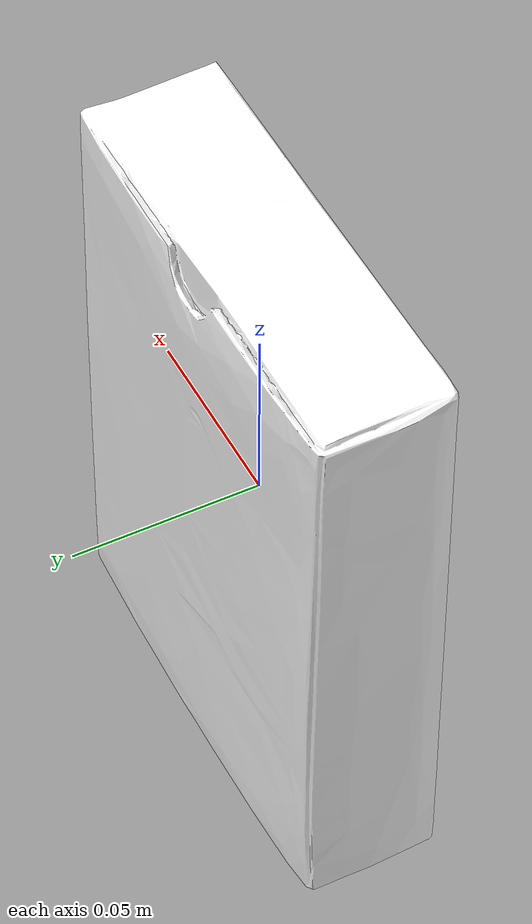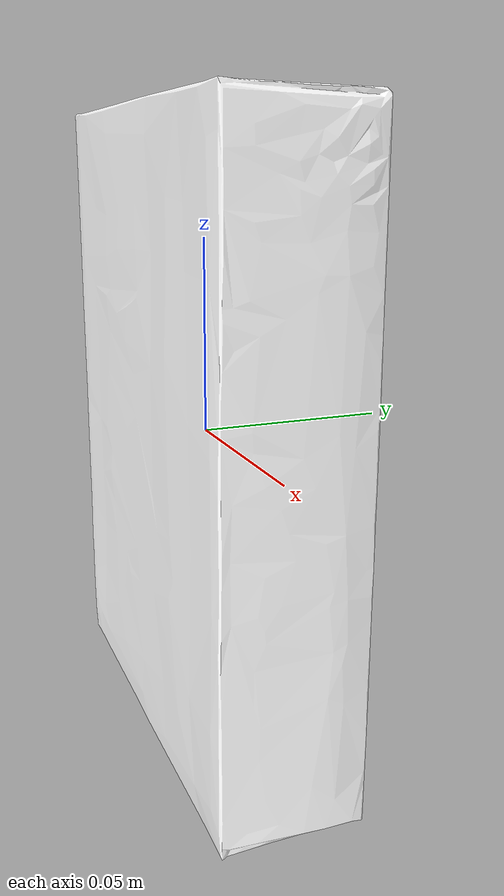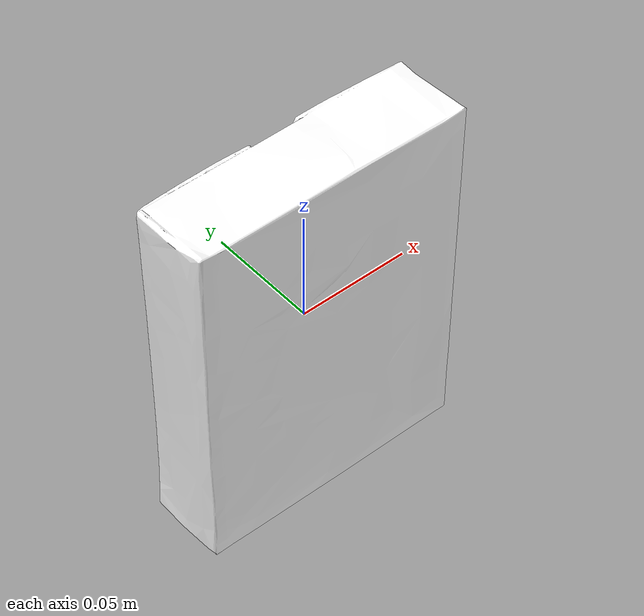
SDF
<?xml version='1.0'?>
<sdf version='1.7'>
  <model name='GranolaBars'>
    <link name='link_0'>
      <inertial>
        <mass>1</mass>
        <inertia>
          <ixx>0.00140651</ixx>
          <ixy>0</ixy>
          <ixz>0</ixz>
          <iyy>0.003559512</iyy>
          <iyz>0</iyz>
          <izz>0.002403107</izz>
        </inertia>
        <pose>0 0 0 0 1.57 0</pose>
      </inertial>
      <self_collide>0</self_collide>
      <enable_wind>0</enable_wind>
      <kinematic>0</kinematic>
      <pose>0 0 0 0 -0 0</pose>
      <gravity>1</gravity>
      <visual name='visual'>
        <geometry>
          <mesh>
            <uri>model://GranolaBars/meshes/model.dae</uri>
            <scale>0.01 0.01 0.01</scale>
          </mesh>
        </geometry>
        <material>
          <script>
            <uri>model://GranolaBars/materials/scripts/</uri>
            <uri>model://GranolaBars/materials/textures/</uri>
            <name>GranolaBars/Diffuse</name>
          </script>
          <shader type='pixel'>
            <normal_map>__default__</normal_map>
          </shader>
          <ambient>1 1 1 1</ambient>
          <diffuse>1 1 1 1</diffuse>
          <specular>0 0 0 1</specular>
          <emissive>0 0 0 1</emissive>
        </material>
        <pose>0 0 0 0 -1.57 0</pose>
        <transparency>0</transparency>
        <cast_shadows>1</cast_shadows>
      </visual>
      <collision name='collision_0'>
        <laser_retro>0</laser_retro>
        <max_contacts>10</max_contacts>
        <pose>0 0 0 0 -1.57 0</pose>
        <geometry>
          <mesh>
            <uri>/home/alessio/model_editor_models/GranolaBars/meshes/model.dae</uri>
            <scale>0.01 0.01 0.01</scale>
          </mesh>
        </geometry>
        <surface>
          <friction>
            <ode>
              <mu>0.6</mu>
              <mu2>0.6</mu2>
              <fdir1>0.707 0.707 0</fdir1>
              <slip1>0</slip1>
              <slip2>0</slip2>
            </ode>
            <torsional>
              <coefficient>0.6</coefficient>
              <patch_radius>0.5</patch_radius>
              <surface_radius>0.5</surface_radius>
              <use_patch_radius>0</use_patch_radius>
              <ode>
                <slip>0</slip>
              </ode>
            </torsional>
          </friction>
          <bounce>
            <restitution_coefficient>0.002</restitution_coefficient>
            <threshold>1e+06</threshold>
          </bounce>
          <contact>
            <collide_without_contact>0</collide_without_contact>
            <collide_without_contact_bitmask>1</collide_without_contact_bitmask>
            <collide_bitmask>1</collide_bitmask>
            <ode>
              <soft_cfm>0</soft_cfm>
              <soft_erp>0.2</soft_erp>
              <kp>1e+10</kp>
              <kd>1e+08</kd>
              <max_vel>0.01</max_vel>
              <min_depth>0</min_depth>
            </ode>
            <bullet>
              <split_impulse>1</split_impulse>
              <split_impulse_penetration_threshold>-0.01</split_impulse_penetration_threshold>
              <soft_cfm>0</soft_cfm>
              <soft_erp>0.2</soft_erp>
              <kp>1e+12</kp>
              <kd>1e+10</kd>
            </bullet>
          </contact>
        </surface>
      </collision>
    </link>
    <static>0</static>
    <allow_auto_disable>1</allow_auto_disable>
  </model>
</sdf>
